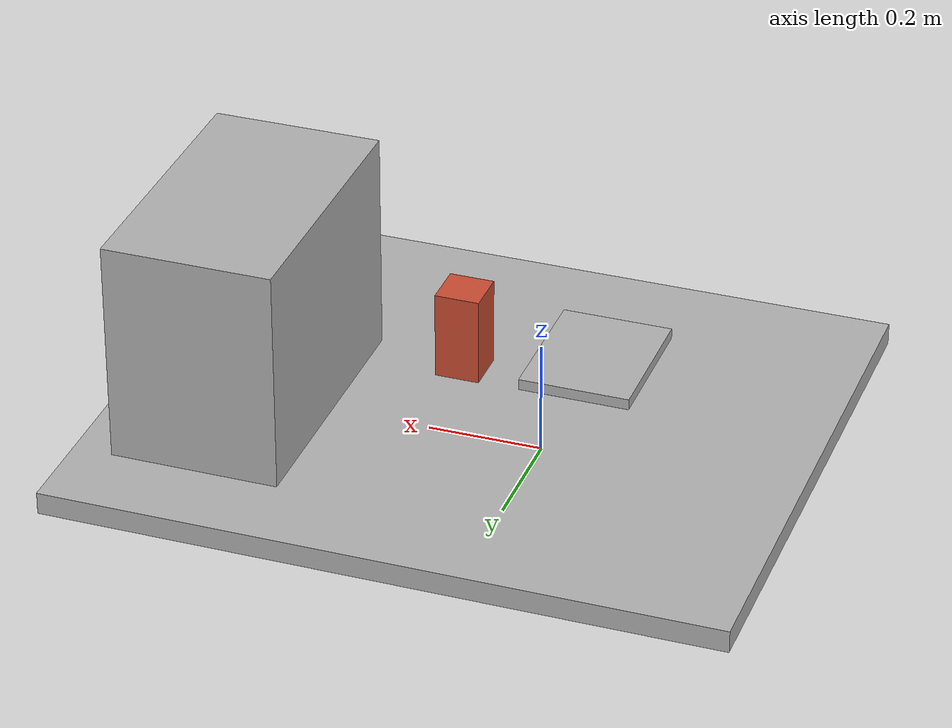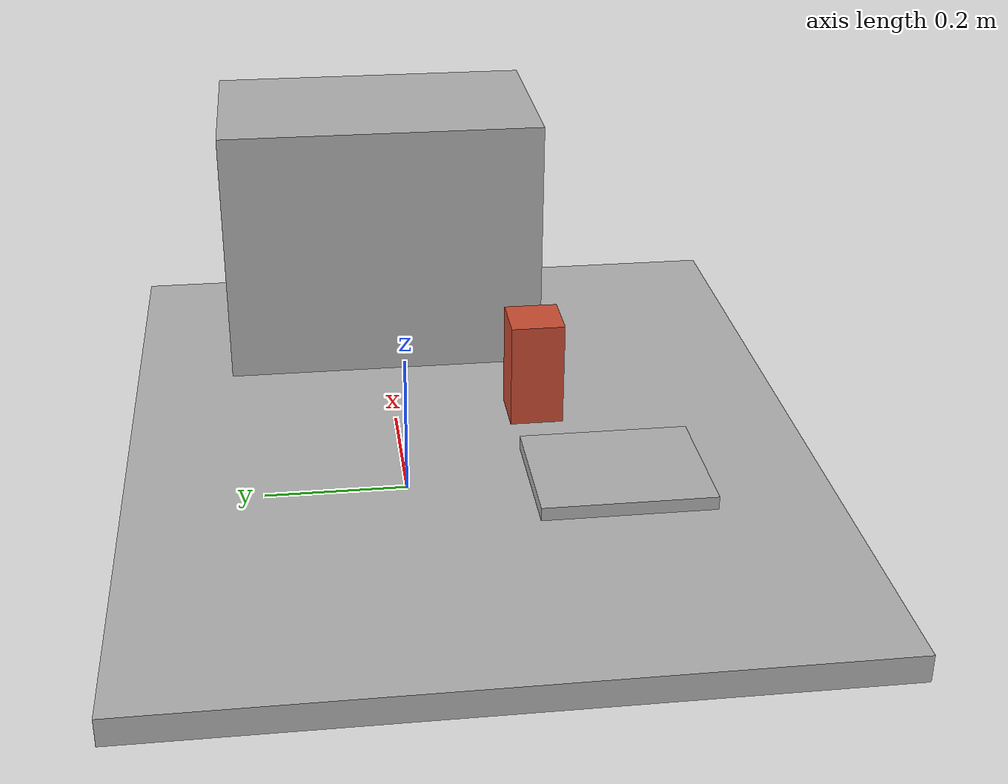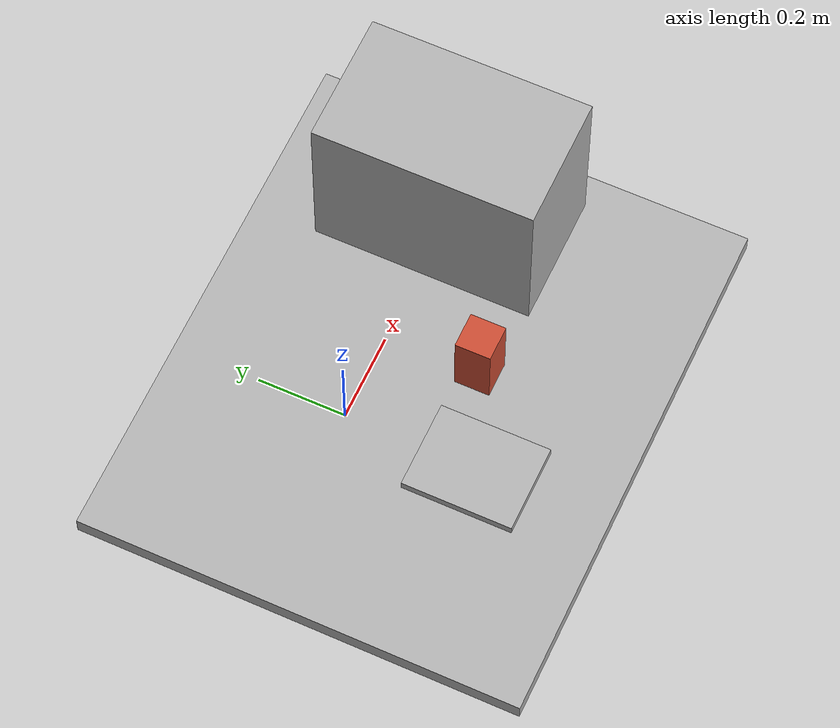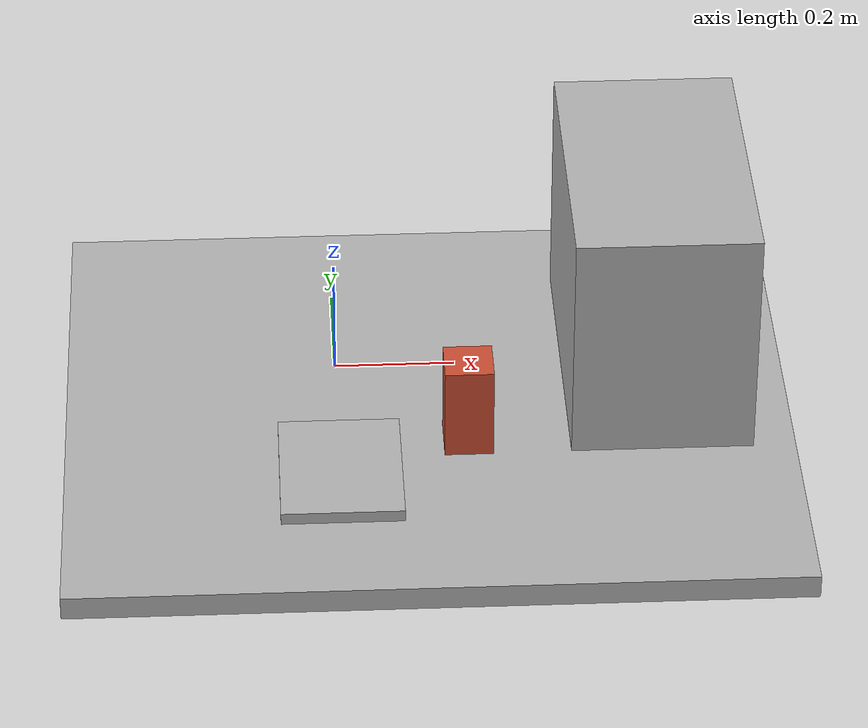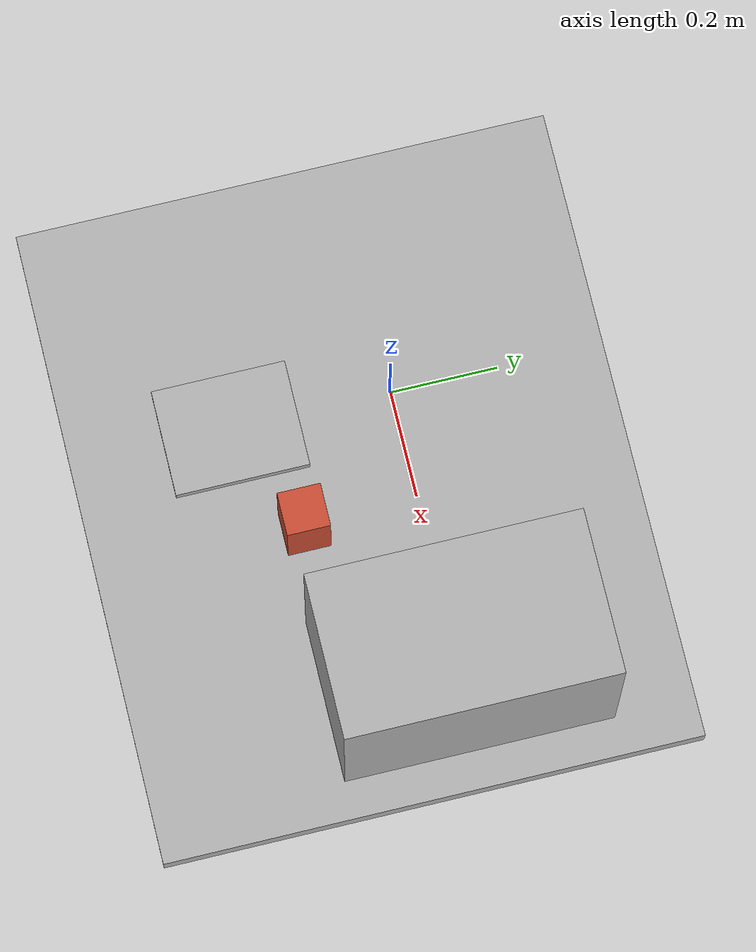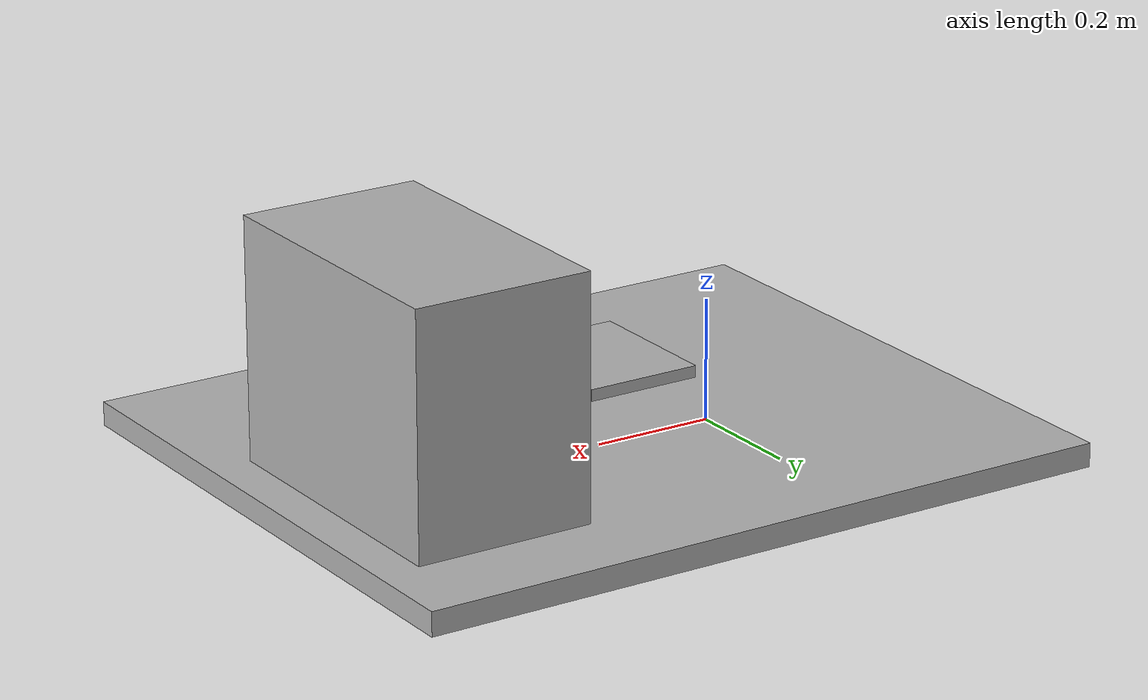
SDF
<?xml version="1.0"?>
<sdf version="1.9">
  <world name="celda">
    <!-- Generado desde el contrato 2.0, variante "2" -->
    <physics name="1ms" type="ignored"><max_step_size>0.001</max_step_size><real_time_factor>1.0</real_time_factor></physics>
    <plugin filename="gz-sim-physics-system" name="gz::sim::systems::Physics"/>
    <plugin filename="gz-sim-user-commands-system" name="gz::sim::systems::UserCommands"/>
    <plugin filename="gz-sim-scene-broadcaster-system" name="gz::sim::systems::SceneBroadcaster"/>
    <light type="directional" name="sol"><pose>0 0 3 0 0 0</pose><direction>-0.5 0.1 -0.9</direction>
      <diffuse>0.8 0.8 0.8 1</diffuse><cast_shadows>true</cast_shadows></light>
    <model name='mesa_trabajo'><static>true</static><pose>0.15 -0.1 -0.025 0 0 0</pose><link name='link'><collision name='c'><geometry><box><size>1.2 1.0 0.04</size></box></geometry></collision><visual name='v'><geometry><box><size>1.2 1.0 0.04</size></box></geometry><material><ambient>0.7 0.7 0.7 1</ambient><diffuse>0.7 0.7 0.7 1</diffuse></material></visual></link></model><model name='centro_cnc'><static>true</static><pose>0.53 0.0 0.195 0 0 0</pose><link name='link'><collision name='c'><geometry><box><size>0.3 0.5 0.4</size></box></geometry></collision><visual name='v'><geometry><box><size>0.3 0.5 0.4</size></box></geometry><material><ambient>0.7 0.7 0.7 1</ambient><diffuse>0.7 0.7 0.7 1</diffuse></material></visual></link></model><model name='bandeja_piezas'><static>true</static><pose>0.0 -0.3 0.005 0 0 0</pose><link name='link'><collision name='c'><geometry><box><size>0.2 0.25 0.02</size></box></geometry></collision><visual name='v'><geometry><box><size>0.2 0.25 0.02</size></box></geometry><material><ambient>0.7 0.7 0.7 1</ambient><diffuse>0.7 0.7 0.7 1</diffuse></material></visual></link></model><model name='o0_prisma'><static>true</static><pose>0.212 -0.212 0.075 0 0 0</pose><link name='link'><collision name='c'><geometry><box><size>0.08 0.08 0.16</size></box></geometry></collision><visual name='v'><geometry><box><size>0.08 0.08 0.16</size></box></geometry><material><ambient>0.8 0.3 0.2 1</ambient><diffuse>0.8 0.3 0.2 1</diffuse></material></visual></link></model>
  </world>
</sdf>
